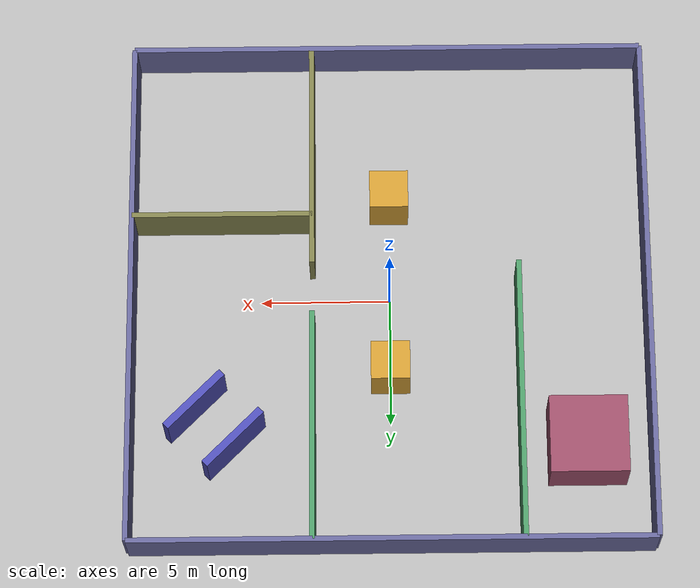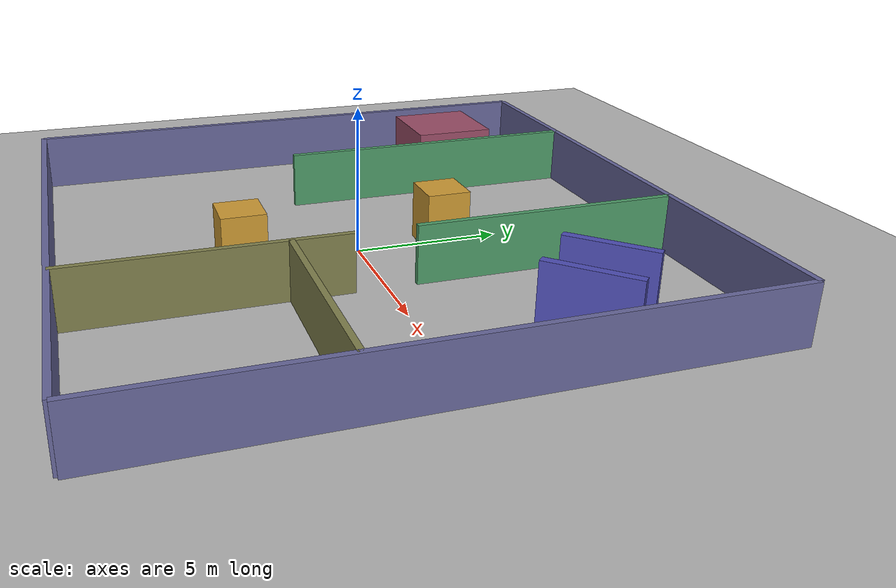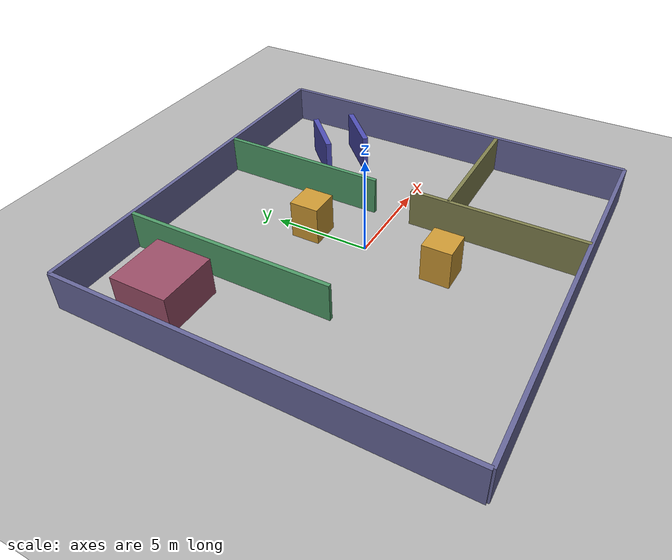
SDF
<?xml version="1.0" ?>
<sdf version='1.8'>
  <world name='maze'>

    <physics name='4ms' type='ignored'>
      <max_step_size>0.004</max_step_size>
      <real_time_factor>1</real_time_factor>
    </physics>

    <plugin filename="ignition-gazebo-physics-system"
            name="ignition::gazebo::systems::Physics"/>
    <plugin filename="ignition-gazebo-user-commands-system"
            name="ignition::gazebo::systems::UserCommands"/>
    <plugin filename="ignition-gazebo-scene-broadcaster-system"
            name="ignition::gazebo::systems::SceneBroadcaster"/>
    <plugin filename="ignition-gazebo-sensors-system"
            name="ignition::gazebo::systems::Sensors">
      <render_engine>ogre2</render_engine>
    </plugin>
    <plugin filename="ignition-gazebo-contact-system"
            name="ignition::gazebo::systems::Contact"/>
    <plugin filename="ignition-gazebo-imu-system"
            name="ignition::gazebo::systems::Imu"/>

    <light name='sun' type='directional'>
      <pose>0 0 10 0 0 0</pose>
      <cast_shadows>true</cast_shadows>
      <intensity>1</intensity>
      <direction>-0.5 0.1 -0.9</direction>
      <diffuse>0.8 0.8 0.8 1</diffuse>
      <specular>0.2 0.2 0.2 1</specular>
    </light>

    <!-- Ground plane -->
    <model name='ground_plane'>
      <static>true</static>
      <link name='link'>
        <collision name='collision'>
          <geometry><plane><normal>0 0 1</normal><size>100 100</size></plane></geometry>
        </collision>
        <visual name='visual'>
          <geometry><plane><normal>0 0 1</normal><size>100 100</size></plane></geometry>
          <material>
            <ambient>0.7 0.7 0.7 1</ambient>
            <diffuse>0.7 0.7 0.7 1</diffuse>
          </material>
        </visual>
      </link>
    </model>

    <!-- ===== OUTER BOUNDARY WALLS (20x20m arena) ===== -->
    <!-- North wall -->
    <model name='wall_north'><static>true</static><link name='link'>
      <pose>0 10 1 0 0 0</pose>
      <collision name='c'><geometry><box><size>20 0.2 2</size></box></geometry></collision>
      <visual name='v'><geometry><box><size>20 0.2 2</size></box></geometry>
        <material><ambient>0.4 0.4 0.6 1</ambient><diffuse>0.4 0.4 0.6 1</diffuse></material></visual>
    </link></model>

    <!-- South wall -->
    <model name='wall_south'><static>true</static><link name='link'>
      <pose>0 -10 1 0 0 0</pose>
      <collision name='c'><geometry><box><size>20 0.2 2</size></box></geometry></collision>
      <visual name='v'><geometry><box><size>20 0.2 2</size></box></geometry>
        <material><ambient>0.4 0.4 0.6 1</ambient><diffuse>0.4 0.4 0.6 1</diffuse></material></visual>
    </link></model>

    <!-- East wall -->
    <model name='wall_east'><static>true</static><link name='link'>
      <pose>10 0 1 0 0 0</pose>
      <collision name='c'><geometry><box><size>0.2 20 2</size></box></geometry></collision>
      <visual name='v'><geometry><box><size>0.2 20 2</size></box></geometry>
        <material><ambient>0.4 0.4 0.6 1</ambient><diffuse>0.4 0.4 0.6 1</diffuse></material></visual>
    </link></model>

    <!-- West wall -->
    <model name='wall_west'><static>true</static><link name='link'>
      <pose>-10 0 1 0 0 0</pose>
      <collision name='c'><geometry><box><size>0.2 20 2</size></box></geometry></collision>
      <visual name='v'><geometry><box><size>0.2 20 2</size></box></geometry>
        <material><ambient>0.4 0.4 0.6 1</ambient><diffuse>0.4 0.4 0.6 1</diffuse></material></visual>
    </link></model>

    <!-- ===== INTERIOR WALLS — ROOM DIVIDERS ===== -->

    <!-- Vertical divider: left side corridor, gap at bottom -->
    <model name='v_div_left'><static>true</static><link name='link'>
      <pose>-5 4.5 1 0 0 0</pose>
      <collision name='c'><geometry><box><size>0.2 11 2</size></box></geometry></collision>
      <visual name='v'><geometry><box><size>0.2 11 2</size></box></geometry>
        <material><ambient>0.3 0.6 0.4 1</ambient><diffuse>0.3 0.6 0.4 1</diffuse></material></visual>
    </link></model>

    <!-- Vertical divider: right side, top half only -->
    <model name='v_div_right_top'><static>true</static><link name='link'>
      <pose>3 5.5 1 0 0 0</pose>
      <collision name='c'><geometry><box><size>0.2 9 2</size></box></geometry></collision>
      <visual name='v'><geometry><box><size>0.2 9 2</size></box></geometry>
        <material><ambient>0.3 0.6 0.4 1</ambient><diffuse>0.3 0.6 0.4 1</diffuse></material></visual>
    </link></model>

    <!-- Bottom-right room: vertical wall -->
    <model name='br_wall_v'><static>true</static><link name='link'>
      <pose>3 -5.5 1 0 0 0</pose>
      <collision name='c'><geometry><box><size>0.2 9 2</size></box></geometry></collision>
      <visual name='v'><geometry><box><size>0.2 9 2</size></box></geometry>
        <material><ambient>0.5 0.5 0.3 1</ambient><diffuse>0.5 0.5 0.3 1</diffuse></material></visual>
    </link></model>

    <!-- Bottom-right room: horizontal wall, gap on left -->
    <model name='br_wall_h'><static>true</static><link name='link'>
      <pose>6.5 -3 1 0 0 0</pose>
      <collision name='c'><geometry><box><size>7 0.2 2</size></box></geometry></collision>
      <visual name='v'><geometry><box><size>7 0.2 2</size></box></geometry>
        <material><ambient>0.5 0.5 0.3 1</ambient><diffuse>0.5 0.5 0.3 1</diffuse></material></visual>
    </link></model>

    <!-- Narrow corridor: top-left box -->
    <model name='tl_box'><static>true</static><link name='link'>
      <pose>-7.5 6 1 0 0 0</pose>
      <collision name='c'><geometry><box><size>3 3 2</size></box></geometry></collision>
      <visual name='v'><geometry><box><size>3 3 2</size></box></geometry>
        <material><ambient>0.6 0.3 0.4 1</ambient><diffuse>0.6 0.3 0.4 1</diffuse></material></visual>
    </link></model>

    <!-- Central pillar cluster -->
    <model name='pillar_a'><static>true</static><link name='link'>
      <pose>0 3 1 0 0 0</pose>
      <collision name='c'><geometry><box><size>1.5 1.5 2</size></box></geometry></collision>
      <visual name='v'><geometry><box><size>1.5 1.5 2</size></box></geometry>
        <material><ambient>0.8 0.6 0.2 1</ambient><diffuse>0.8 0.6 0.2 1</diffuse></material></visual>
    </link></model>

    <model name='pillar_b'><static>true</static><link name='link'>
      <pose>0 -4 1 0 0 0</pose>
      <collision name='c'><geometry><box><size>1.5 1.5 2</size></box></geometry></collision>
      <visual name='v'><geometry><box><size>1.5 1.5 2</size></box></geometry>
        <material><ambient>0.8 0.6 0.2 1</ambient><diffuse>0.8 0.6 0.2 1</diffuse></material></visual>
    </link></model>

    <!-- Diagonal obstacle block (top-right area) -->
    <model name='diag_block_1'><static>true</static><link name='link'>
      <pose>6 6 1 0 0 0.785</pose>
      <collision name='c'><geometry><box><size>3 0.3 2</size></box></geometry></collision>
      <visual name='v'><geometry><box><size>3 0.3 2</size></box></geometry>
        <material><ambient>0.3 0.3 0.7 1</ambient><diffuse>0.3 0.3 0.7 1</diffuse></material></visual>
    </link></model>

    <model name='diag_block_2'><static>true</static><link name='link'>
      <pose>7.5 4.5 1 0 0 0.785</pose>
      <collision name='c'><geometry><box><size>3 0.3 2</size></box></geometry></collision>
      <visual name='v'><geometry><box><size>3 0.3 2</size></box></geometry>
        <material><ambient>0.3 0.3 0.7 1</ambient><diffuse>0.3 0.3 0.7 1</diffuse></material></visual>
    </link></model>

    <!-- Overview camera (generic placement — see hospital.world's
         world_monitor_cam for the hand-tuned original). -->
    <model name='world_monitor_cam'>
      <static>true</static>
      <pose>4.5 4.0 3.3 0 0.55 -2.356</pose>
      <link name='link'>
        <sensor name='monitor_camera' type='camera'>
          <always_on>true</always_on>
          <update_rate>10</update_rate>
          <topic>world_monitor/image_raw</topic>
          <camera>
            <horizontal_fov>1.3</horizontal_fov>
            <image><width>960</width><height>540</height><format>R8G8B8</format></image>
            <clip><near>0.05</near><far>15.0</far></clip>
          </camera>
        </sensor>
      </link>
    </model>

  </world>
</sdf>
